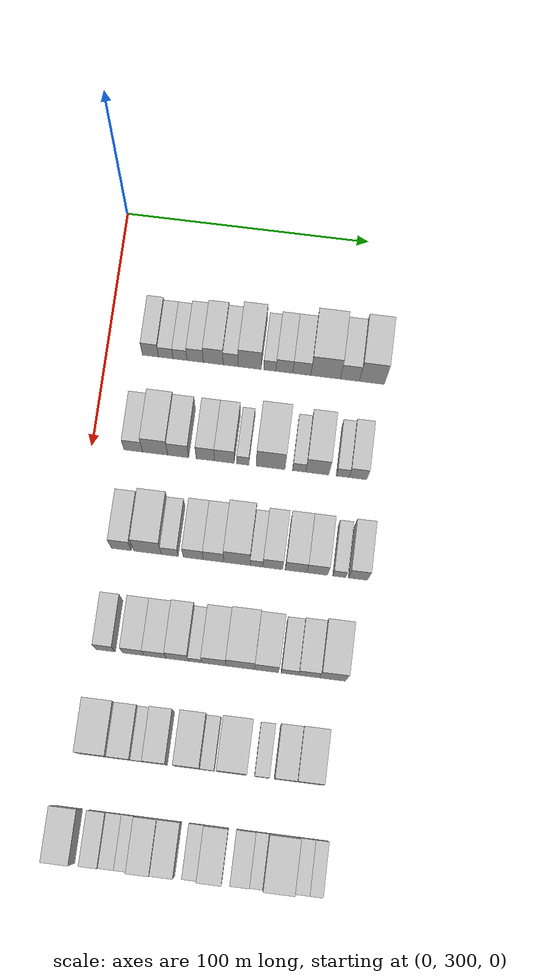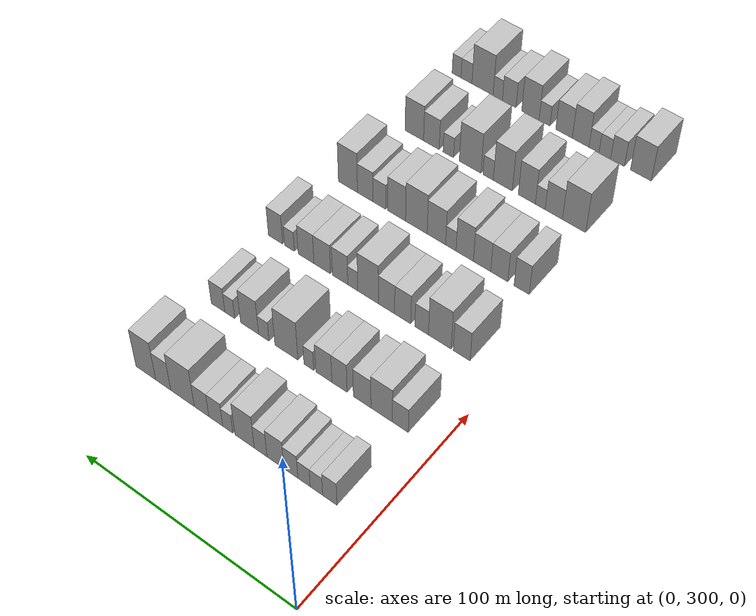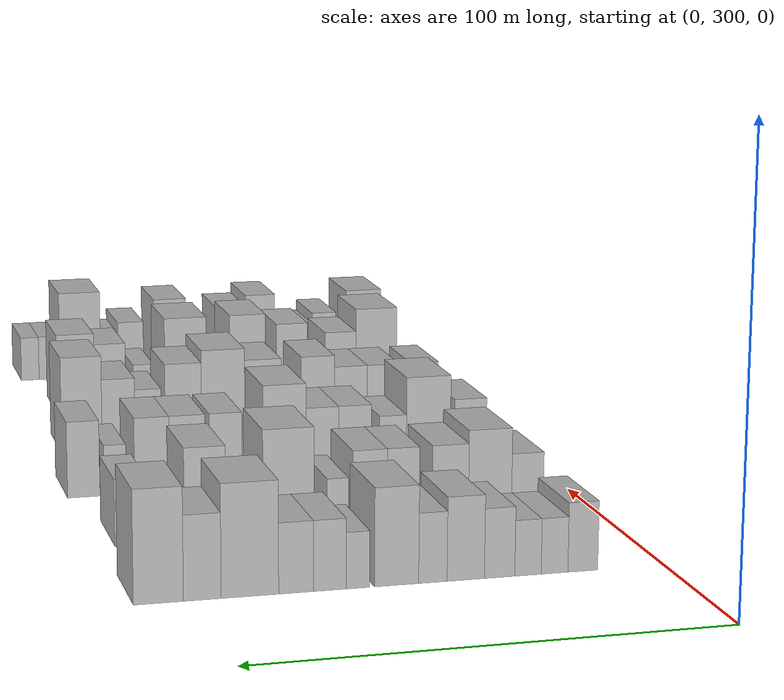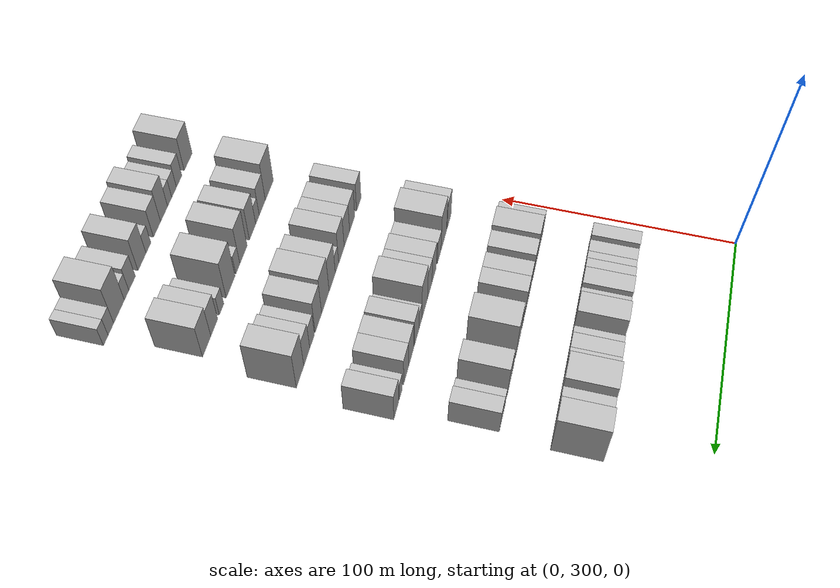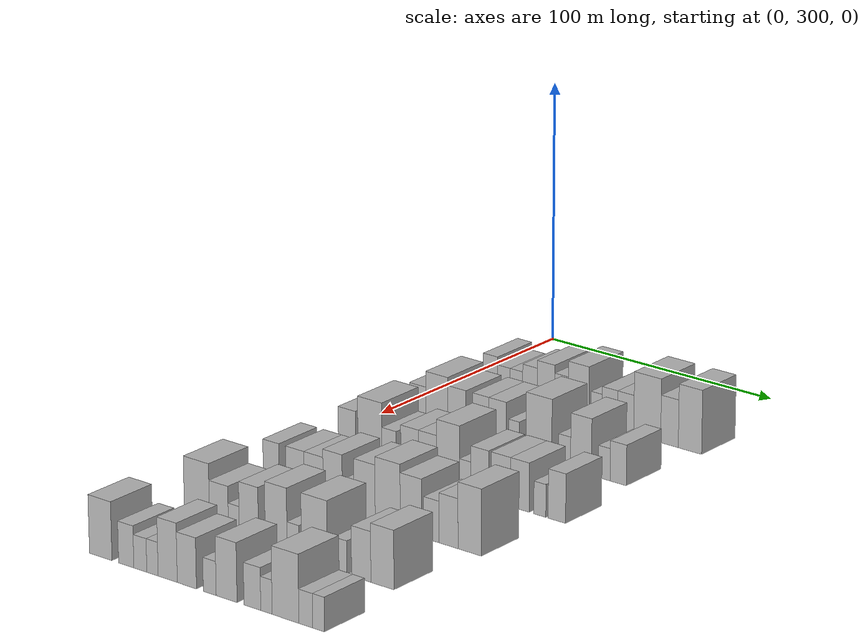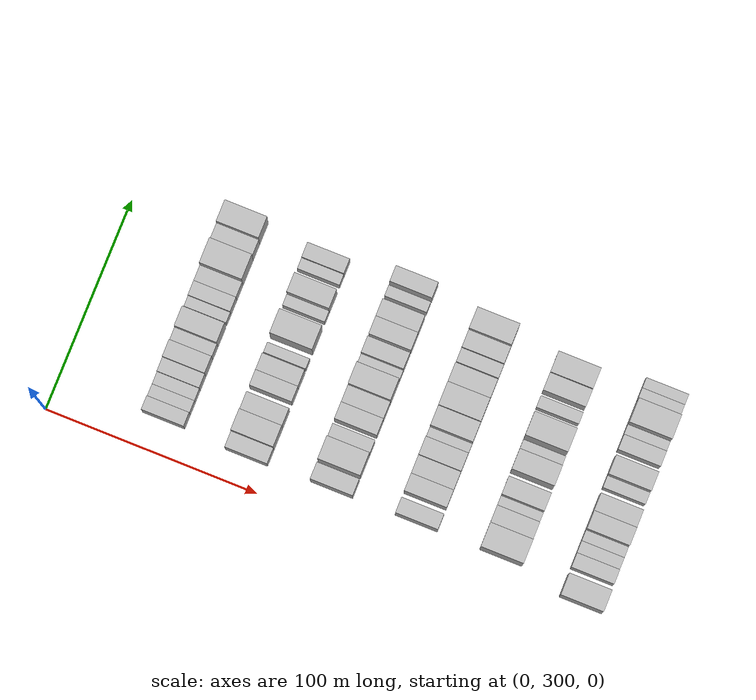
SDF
<sdf version="1.6">
 <world name="default">
  <model name="building_97">
   <static>1</static>
   <pose>50.0000 317.9130 0 0.000000 0.000000 0.000000</pose>
   <link name="link">
    <pose>0 0 7.50 0 0 0</pose>
    <collision name="collision"><geometry><box><size>20.0000 6.5725 15.0000</size></box></geometry></collision>
    <visual name="visual">
     <cast_shadows>0</cast_shadows>
     <geometry><box><size>20.0000 6.5725 15.0000</size></box></geometry>
     <material>
      <script>
       <uri>model://HANNAS_wall/materials/scripts</uri>
       <uri>model://HANNAS_wall/materials/textures</uri>
       <name>vrc/HANNAS_wall</name>
      </script>
     </material>
    </visual>
   </link>
  </model>
  <model name="building_98">
   <static>1</static>
   <pose>50.0000 324.1187 0 0.000000 0.000000 0.000000</pose>
   <link name="link">
    <pose>0 0 6.00 0 0 0</pose>
    <collision name="collision"><geometry><box><size>20.0000 5.8389 12.0000</size></box></geometry></collision>
    <visual name="visual">
     <cast_shadows>0</cast_shadows>
     <geometry><box><size>20.0000 5.8389 12.0000</size></box></geometry>
     <material>
      <script>
       <uri>model://HANNAS_wall/materials/scripts</uri>
       <uri>model://HANNAS_wall/materials/textures</uri>
       <name>vrc/HANNAS_wall</name>
      </script>
     </material>
    </visual>
   </link>
  </model>
  <model name="building_99">
   <static>1</static>
   <pose>50.0000 329.9187 0 0.000000 0.000000 0.000000</pose>
   <link name="link">
    <pose>0 0 6.00 0 0 0</pose>
    <collision name="collision"><geometry><box><size>20.0000 5.7612 12.0000</size></box></geometry></collision>
    <visual name="visual">
     <cast_shadows>0</cast_shadows>
     <geometry><box><size>20.0000 5.7612 12.0000</size></box></geometry>
     <material>
      <script>
       <uri>model://HANNAS_wall/materials/scripts</uri>
       <uri>model://HANNAS_wall/materials/textures</uri>
       <name>vrc/HANNAS_wall</name>
      </script>
     </material>
    </visual>
   </link>
  </model>
  <model name="building_100">
   <static>1</static>
   <pose>50.0000 336.0989 0 0.000000 0.000000 0.000000</pose>
   <link name="link">
    <pose>0 0 7.50 0 0 0</pose>
    <collision name="collision"><geometry><box><size>20.0000 6.5991 15.0000</size></box></geometry></collision>
    <visual name="visual">
     <cast_shadows>0</cast_shadows>
     <geometry><box><size>20.0000 6.5991 15.0000</size></box></geometry>
     <material>
      <script>
       <uri>model://HANNAS_wall/materials/scripts</uri>
       <uri>model://HANNAS_wall/materials/textures</uri>
       <name>vrc/HANNAS_wall</name>
      </script>
     </material>
    </visual>
   </link>
  </model>
  <model name="building_101">
   <static>1</static>
   <pose>50.0000 343.4190 0 0.000000 0.000000 0.000000</pose>
   <link name="link">
    <pose>0 0 9.00 0 0 0</pose>
    <collision name="collision"><geometry><box><size>20.0000 8.0412 18.0000</size></box></geometry></collision>
    <visual name="visual">
     <cast_shadows>0</cast_shadows>
     <geometry><box><size>20.0000 8.0412 18.0000</size></box></geometry>
     <material>
      <script>
       <uri>model://HANNAS_wall/materials/scripts</uri>
       <uri>model://HANNAS_wall/materials/textures</uri>
       <name>vrc/HANNAS_wall</name>
      </script>
     </material>
    </visual>
   </link>
  </model>
  <model name="building_102">
   <static>1</static>
   <pose>50.0000 350.4872 0 0.000000 0.000000 0.000000</pose>
   <link name="link">
    <pose>0 0 7.50 0 0 0</pose>
    <collision name="collision"><geometry><box><size>20.0000 6.0953 15.0000</size></box></geometry></collision>
    <visual name="visual">
     <cast_shadows>0</cast_shadows>
     <geometry><box><size>20.0000 6.0953 15.0000</size></box></geometry>
     <material>
      <script>
       <uri>model://HANNAS_wall/materials/scripts</uri>
       <uri>model://HANNAS_wall/materials/textures</uri>
       <name>vrc/HANNAS_wall</name>
      </script>
     </material>
    </visual>
   </link>
  </model>
  <model name="building_103">
   <static>1</static>
   <pose>50.0000 358.2339 0 0.000000 0.000000 0.000000</pose>
   <link name="link">
    <pose>0 0 10.50 0 0 0</pose>
    <collision name="collision"><geometry><box><size>20.0000 9.3980 21.0000</size></box></geometry></collision>
    <visual name="visual">
     <cast_shadows>0</cast_shadows>
     <geometry><box><size>20.0000 9.3980 21.0000</size></box></geometry>
     <material>
      <script>
       <uri>model://HANNAS_wall/materials/scripts</uri>
       <uri>model://HANNAS_wall/materials/textures</uri>
       <name>vrc/HANNAS_wall</name>
      </script>
     </material>
    </visual>
   </link>
  </model>
  <model name="building_104">
   <static>1</static>
   <pose>50.0000 366.4157 0 0.000000 0.000000 0.000000</pose>
   <link name="link">
    <pose>0 0 6.00 0 0 0</pose>
    <collision name="collision"><geometry><box><size>20.0000 4.9656 12.0000</size></box></geometry></collision>
    <visual name="visual">
     <cast_shadows>0</cast_shadows>
     <geometry><box><size>20.0000 4.9656 12.0000</size></box></geometry>
     <material>
      <script>
       <uri>model://HANNAS_wall/materials/scripts</uri>
       <uri>model://HANNAS_wall/materials/textures</uri>
       <name>vrc/HANNAS_wall</name>
      </script>
     </material>
    </visual>
   </link>
  </model>
  <model name="building_105">
   <static>1</static>
   <pose>50.0000 372.3420 0 0.000000 0.000000 0.000000</pose>
   <link name="link">
    <pose>0 0 7.50 0 0 0</pose>
    <collision name="collision"><geometry><box><size>20.0000 6.8870 15.0000</size></box></geometry></collision>
    <visual name="visual">
     <cast_shadows>0</cast_shadows>
     <geometry><box><size>20.0000 6.8870 15.0000</size></box></geometry>
     <material>
      <script>
       <uri>model://HANNAS_wall/materials/scripts</uri>
       <uri>model://HANNAS_wall/materials/textures</uri>
       <name>vrc/HANNAS_wall</name>
      </script>
     </material>
    </visual>
   </link>
  </model>
  <model name="building_106">
   <static>1</static>
   <pose>50.0000 379.4126 0 0.000000 0.000000 0.000000</pose>
   <link name="link">
    <pose>0 0 7.50 0 0 0</pose>
    <collision name="collision"><geometry><box><size>20.0000 7.2542 15.0000</size></box></geometry></collision>
    <visual name="visual">
     <cast_shadows>0</cast_shadows>
     <geometry><box><size>20.0000 7.2542 15.0000</size></box></geometry>
     <material>
      <script>
       <uri>model://HANNAS_wall/materials/scripts</uri>
       <uri>model://HANNAS_wall/materials/textures</uri>
       <name>vrc/HANNAS_wall</name>
      </script>
     </material>
    </visual>
   </link>
  </model>
  <model name="building_107">
   <static>1</static>
   <pose>50.0000 388.9922 0 0.000000 0.000000 0.000000</pose>
   <link name="link">
    <pose>0 0 12.00 0 0 0</pose>
    <collision name="collision"><geometry><box><size>20.0000 11.9051 24.0000</size></box></geometry></collision>
    <visual name="visual">
     <cast_shadows>0</cast_shadows>
     <geometry><box><size>20.0000 11.9051 24.0000</size></box></geometry>
     <material>
      <script>
       <uri>model://HANNAS_wall/materials/scripts</uri>
       <uri>model://HANNAS_wall/materials/textures</uri>
       <name>vrc/HANNAS_wall</name>
      </script>
     </material>
    </visual>
   </link>
  </model>
  <model name="building_108">
   <static>1</static>
   <pose>50.0000 398.8072 0 0.000000 0.000000 0.000000</pose>
   <link name="link">
    <pose>0 0 9.00 0 0 0</pose>
    <collision name="collision"><geometry><box><size>20.0000 7.7250 18.0000</size></box></geometry></collision>
    <visual name="visual">
     <cast_shadows>0</cast_shadows>
     <geometry><box><size>20.0000 7.7250 18.0000</size></box></geometry>
     <material>
      <script>
       <uri>model://HANNAS_wall/materials/scripts</uri>
       <uri>model://HANNAS_wall/materials/textures</uri>
       <name>vrc/HANNAS_wall</name>
      </script>
     </material>
    </visual>
   </link>
  </model>
  <model name="building_109">
   <static>1</static>
   <pose>50.0000 407.7557 0 0.000000 0.000000 0.000000</pose>
   <link name="link">
    <pose>0 0 12.00 0 0 0</pose>
    <collision name="collision"><geometry><box><size>20.0000 10.1720 24.0000</size></box></geometry></collision>
    <visual name="visual">
     <cast_shadows>0</cast_shadows>
     <geometry><box><size>20.0000 10.1720 24.0000</size></box></geometry>
     <material>
      <script>
       <uri>model://HANNAS_wall/materials/scripts</uri>
       <uri>model://HANNAS_wall/materials/textures</uri>
       <name>vrc/HANNAS_wall</name>
      </script>
     </material>
    </visual>
   </link>
  </model>
  <model name="building_238">
   <static>1</static>
   <pose>90.0000 316.7039 0 0.000000 0.000000 0.000000</pose>
   <link name="link">
    <pose>0 0 7.50 0 0 0</pose>
    <collision name="collision"><geometry><box><size>20.0000 7.4853 15.0000</size></box></geometry></collision>
    <visual name="visual">
     <cast_shadows>0</cast_shadows>
     <geometry><box><size>20.0000 7.4853 15.0000</size></box></geometry>
     <material>
      <script>
       <uri>model://HANNAS_wall/materials/scripts</uri>
       <uri>model://HANNAS_wall/materials/textures</uri>
       <name>vrc/HANNAS_wall</name>
      </script>
     </material>
    </visual>
   </link>
  </model>
  <model name="building_239">
   <static>1</static>
   <pose>90.0000 325.4733 0 0.000000 0.000000 0.000000</pose>
   <link name="link">
    <pose>0 0 10.50 0 0 0</pose>
    <collision name="collision"><geometry><box><size>20.0000 10.0536 21.0000</size></box></geometry></collision>
    <visual name="visual">
     <cast_shadows>0</cast_shadows>
     <geometry><box><size>20.0000 10.0536 21.0000</size></box></geometry>
     <material>
      <script>
       <uri>model://HANNAS_wall/materials/scripts</uri>
       <uri>model://HANNAS_wall/materials/textures</uri>
       <name>vrc/HANNAS_wall</name>
      </script>
     </material>
    </visual>
   </link>
  </model>
  <model name="building_240">
   <static>1</static>
   <pose>90.0000 334.6972 0 0.000000 0.000000 0.000000</pose>
   <link name="link">
    <pose>0 0 9.00 0 0 0</pose>
    <collision name="collision"><geometry><box><size>20.0000 8.3943 18.0000</size></box></geometry></collision>
    <visual name="visual">
     <cast_shadows>0</cast_shadows>
     <geometry><box><size>20.0000 8.3943 18.0000</size></box></geometry>
     <material>
      <script>
       <uri>model://HANNAS_wall/materials/scripts</uri>
       <uri>model://HANNAS_wall/materials/textures</uri>
       <name>vrc/HANNAS_wall</name>
      </script>
     </material>
    </visual>
   </link>
  </model>
  <model name="building_241">
   <static>1</static>
   <pose>90.0000 345.5671 0 0.000000 0.000000 0.000000</pose>
   <link name="link">
    <pose>0 0 9.00 0 0 0</pose>
    <collision name="collision"><geometry><box><size>20.0000 7.3455 18.0000</size></box></geometry></collision>
    <visual name="visual">
     <cast_shadows>0</cast_shadows>
     <geometry><box><size>20.0000 7.3455 18.0000</size></box></geometry>
     <material>
      <script>
       <uri>model://HANNAS_wall/materials/scripts</uri>
       <uri>model://HANNAS_wall/materials/textures</uri>
       <name>vrc/HANNAS_wall</name>
      </script>
     </material>
    </visual>
   </link>
  </model>
  <model name="building_242">
   <static>1</static>
   <pose>90.0000 353.1679 0 0.000000 0.000000 0.000000</pose>
   <link name="link">
    <pose>0 0 9.00 0 0 0</pose>
    <collision name="collision"><geometry><box><size>20.0000 7.8560 18.0000</size></box></geometry></collision>
    <visual name="visual">
     <cast_shadows>0</cast_shadows>
     <geometry><box><size>20.0000 7.8560 18.0000</size></box></geometry>
     <material>
      <script>
       <uri>model://HANNAS_wall/materials/scripts</uri>
       <uri>model://HANNAS_wall/materials/textures</uri>
       <name>vrc/HANNAS_wall</name>
      </script>
     </material>
    </visual>
   </link>
  </model>
  <model name="building_243">
   <static>1</static>
   <pose>90.0000 360.5022 0 0.000000 0.000000 0.000000</pose>
   <link name="link">
    <pose>0 0 6.00 0 0 0</pose>
    <collision name="collision"><geometry><box><size>20.0000 4.8127 12.0000</size></box></geometry></collision>
    <visual name="visual">
     <cast_shadows>0</cast_shadows>
     <geometry><box><size>20.0000 4.8127 12.0000</size></box></geometry>
     <material>
      <script>
       <uri>model://HANNAS_wall/materials/scripts</uri>
       <uri>model://HANNAS_wall/materials/textures</uri>
       <name>vrc/HANNAS_wall</name>
      </script>
     </material>
    </visual>
   </link>
  </model>
  <model name="building_244">
   <static>1</static>
   <pose>90.0000 371.6501 0 0.000000 0.000000 0.000000</pose>
   <link name="link">
    <pose>0 0 12.00 0 0 0</pose>
    <collision name="collision"><geometry><box><size>20.0000 11.4831 24.0000</size></box></geometry></collision>
    <visual name="visual">
     <cast_shadows>0</cast_shadows>
     <geometry><box><size>20.0000 11.4831 24.0000</size></box></geometry>
     <material>
      <script>
       <uri>model://HANNAS_wall/materials/scripts</uri>
       <uri>model://HANNAS_wall/materials/textures</uri>
       <name>vrc/HANNAS_wall</name>
      </script>
     </material>
    </visual>
   </link>
  </model>
  <model name="building_245">
   <static>1</static>
   <pose>90.0000 383.0316 0 0.000000 0.000000 0.000000</pose>
   <link name="link">
    <pose>0 0 6.00 0 0 0</pose>
    <collision name="collision"><geometry><box><size>20.0000 5.2798 12.0000</size></box></geometry></collision>
    <visual name="visual">
     <cast_shadows>0</cast_shadows>
     <geometry><box><size>20.0000 5.2798 12.0000</size></box></geometry>
     <material>
      <script>
       <uri>model://HANNAS_wall/materials/scripts</uri>
       <uri>model://HANNAS_wall/materials/textures</uri>
       <name>vrc/HANNAS_wall</name>
      </script>
     </material>
    </visual>
   </link>
  </model>
  <model name="building_246">
   <static>1</static>
   <pose>90.0000 390.2616 0 0.000000 0.000000 0.000000</pose>
   <link name="link">
    <pose>0 0 10.50 0 0 0</pose>
    <collision name="collision"><geometry><box><size>20.0000 9.1801 21.0000</size></box></geometry></collision>
    <visual name="visual">
     <cast_shadows>0</cast_shadows>
     <geometry><box><size>20.0000 9.1801 21.0000</size></box></geometry>
     <material>
      <script>
       <uri>model://HANNAS_wall/materials/scripts</uri>
       <uri>model://HANNAS_wall/materials/textures</uri>
       <name>vrc/HANNAS_wall</name>
      </script>
     </material>
    </visual>
   </link>
  </model>
  <model name="building_247">
   <static>1</static>
   <pose>90.0000 400.4141 0 0.000000 0.000000 0.000000</pose>
   <link name="link">
    <pose>0 0 6.00 0 0 0</pose>
    <collision name="collision"><geometry><box><size>20.0000 5.1250 12.0000</size></box></geometry></collision>
    <visual name="visual">
     <cast_shadows>0</cast_shadows>
     <geometry><box><size>20.0000 5.1250 12.0000</size></box></geometry>
     <material>
      <script>
       <uri>model://HANNAS_wall/materials/scripts</uri>
       <uri>model://HANNAS_wall/materials/textures</uri>
       <name>vrc/HANNAS_wall</name>
      </script>
     </material>
    </visual>
   </link>
  </model>
  <model name="building_248">
   <static>1</static>
   <pose>90.0000 406.5067 0 0.000000 0.000000 0.000000</pose>
   <link name="link">
    <pose>0 0 7.50 0 0 0</pose>
    <collision name="collision"><geometry><box><size>20.0000 7.0603 15.0000</size></box></geometry></collision>
    <visual name="visual">
     <cast_shadows>0</cast_shadows>
     <geometry><box><size>20.0000 7.0603 15.0000</size></box></geometry>
     <material>
      <script>
       <uri>model://HANNAS_wall/materials/scripts</uri>
       <uri>model://HANNAS_wall/materials/textures</uri>
       <name>vrc/HANNAS_wall</name>
      </script>
     </material>
    </visual>
   </link>
  </model>
  <model name="building_378">
   <static>1</static>
   <pose>130.0000 317.6901 0 0.000000 0.000000 0.000000</pose>
   <link name="link">
    <pose>0 0 9.00 0 0 0</pose>
    <collision name="collision"><geometry><box><size>20.0000 7.9428 18.0000</size></box></geometry></collision>
    <visual name="visual">
     <cast_shadows>0</cast_shadows>
     <geometry><box><size>20.0000 7.9428 18.0000</size></box></geometry>
     <material>
      <script>
       <uri>model://HANNAS_wall/materials/scripts</uri>
       <uri>model://HANNAS_wall/materials/textures</uri>
       <name>vrc/HANNAS_wall</name>
      </script>
     </material>
    </visual>
   </link>
  </model>
  <model name="building_379">
   <static>1</static>
   <pose>130.0000 328.1172 0 0.000000 0.000000 0.000000</pose>
   <link name="link">
    <pose>0 0 12.00 0 0 0</pose>
    <collision name="collision"><geometry><box><size>20.0000 10.9113 24.0000</size></box></geometry></collision>
    <visual name="visual">
     <cast_shadows>0</cast_shadows>
     <geometry><box><size>20.0000 10.9113 24.0000</size></box></geometry>
     <material>
      <script>
       <uri>model://HANNAS_wall/materials/scripts</uri>
       <uri>model://HANNAS_wall/materials/textures</uri>
       <name>vrc/HANNAS_wall</name>
      </script>
     </material>
    </visual>
   </link>
  </model>
  <model name="building_380">
   <static>1</static>
   <pose>130.0000 336.8634 0 0.000000 0.000000 0.000000</pose>
   <link name="link">
    <pose>0 0 7.50 0 0 0</pose>
    <collision name="collision"><geometry><box><size>20.0000 6.5812 15.0000</size></box></geometry></collision>
    <visual name="visual">
     <cast_shadows>0</cast_shadows>
     <geometry><box><size>20.0000 6.5812 15.0000</size></box></geometry>
     <material>
      <script>
       <uri>model://HANNAS_wall/materials/scripts</uri>
       <uri>model://HANNAS_wall/materials/textures</uri>
       <name>vrc/HANNAS_wall</name>
      </script>
     </material>
    </visual>
   </link>
  </model>
  <model name="building_381">
   <static>1</static>
   <pose>130.0000 346.1193 0 0.000000 0.000000 0.000000</pose>
   <link name="link">
    <pose>0 0 9.00 0 0 0</pose>
    <collision name="collision"><geometry><box><size>20.0000 7.9304 18.0000</size></box></geometry></collision>
    <visual name="visual">
     <cast_shadows>0</cast_shadows>
     <geometry><box><size>20.0000 7.9304 18.0000</size></box></geometry>
     <material>
      <script>
       <uri>model://HANNAS_wall/materials/scripts</uri>
       <uri>model://HANNAS_wall/materials/textures</uri>
       <name>vrc/HANNAS_wall</name>
      </script>
     </material>
    </visual>
   </link>
  </model>
  <model name="building_382">
   <static>1</static>
   <pose>130.0000 354.0939 0 0.000000 0.000000 0.000000</pose>
   <link name="link">
    <pose>0 0 9.00 0 0 0</pose>
    <collision name="collision"><geometry><box><size>20.0000 8.0189 18.0000</size></box></geometry></collision>
    <visual name="visual">
     <cast_shadows>0</cast_shadows>
     <geometry><box><size>20.0000 8.0189 18.0000</size></box></geometry>
     <material>
      <script>
       <uri>model://HANNAS_wall/materials/scripts</uri>
       <uri>model://HANNAS_wall/materials/textures</uri>
       <name>vrc/HANNAS_wall</name>
      </script>
     </material>
    </visual>
   </link>
  </model>
  <model name="building_383">
   <static>1</static>
   <pose>130.0000 363.2618 0 0.000000 0.000000 0.000000</pose>
   <link name="link">
    <pose>0 0 12.00 0 0 0</pose>
    <collision name="collision"><geometry><box><size>20.0000 10.3169 24.0000</size></box></geometry></collision>
    <visual name="visual">
     <cast_shadows>0</cast_shadows>
     <geometry><box><size>20.0000 10.3169 24.0000</size></box></geometry>
     <material>
      <script>
       <uri>model://HANNAS_wall/materials/scripts</uri>
       <uri>model://HANNAS_wall/materials/textures</uri>
       <name>vrc/HANNAS_wall</name>
      </script>
     </material>
    </visual>
   </link>
  </model>
  <model name="building_384">
   <static>1</static>
   <pose>130.0000 370.9301 0 0.000000 0.000000 0.000000</pose>
   <link name="link">
    <pose>0 0 6.00 0 0 0</pose>
    <collision name="collision"><geometry><box><size>20.0000 5.0197 12.0000</size></box></geometry></collision>
    <visual name="visual">
     <cast_shadows>0</cast_shadows>
     <geometry><box><size>20.0000 5.0197 12.0000</size></box></geometry>
     <material>
      <script>
       <uri>model://HANNAS_wall/materials/scripts</uri>
       <uri>model://HANNAS_wall/materials/textures</uri>
       <name>vrc/HANNAS_wall</name>
      </script>
     </material>
    </visual>
   </link>
  </model>
  <model name="building_385">
   <static>1</static>
   <pose>130.0000 377.3393 0 0.000000 0.000000 0.000000</pose>
   <link name="link">
    <pose>0 0 9.00 0 0 0</pose>
    <collision name="collision"><geometry><box><size>20.0000 7.7988 18.0000</size></box></geometry></collision>
    <visual name="visual">
     <cast_shadows>0</cast_shadows>
     <geometry><box><size>20.0000 7.7988 18.0000</size></box></geometry>
     <material>
      <script>
       <uri>model://HANNAS_wall/materials/scripts</uri>
       <uri>model://HANNAS_wall/materials/textures</uri>
       <name>vrc/HANNAS_wall</name>
      </script>
     </material>
    </visual>
   </link>
  </model>
  <model name="building_386">
   <static>1</static>
   <pose>130.0000 386.4889 0 0.000000 0.000000 0.000000</pose>
   <link name="link">
    <pose>0 0 9.00 0 0 0</pose>
    <collision name="collision"><geometry><box><size>20.0000 8.5003 18.0000</size></box></geometry></collision>
    <visual name="visual">
     <cast_shadows>0</cast_shadows>
     <geometry><box><size>20.0000 8.5003 18.0000</size></box></geometry>
     <material>
      <script>
       <uri>model://HANNAS_wall/materials/scripts</uri>
       <uri>model://HANNAS_wall/materials/textures</uri>
       <name>vrc/HANNAS_wall</name>
      </script>
     </material>
    </visual>
   </link>
  </model>
  <model name="building_387">
   <static>1</static>
   <pose>130.0000 394.8324 0 0.000000 0.000000 0.000000</pose>
   <link name="link">
    <pose>0 0 9.00 0 0 0</pose>
    <collision name="collision"><geometry><box><size>20.0000 8.1868 18.0000</size></box></geometry></collision>
    <visual name="visual">
     <cast_shadows>0</cast_shadows>
     <geometry><box><size>20.0000 8.1868 18.0000</size></box></geometry>
     <material>
      <script>
       <uri>model://HANNAS_wall/materials/scripts</uri>
       <uri>model://HANNAS_wall/materials/textures</uri>
       <name>vrc/HANNAS_wall</name>
      </script>
     </material>
    </visual>
   </link>
  </model>
  <model name="building_388">
   <static>1</static>
   <pose>130.0000 403.5002 0 0.000000 0.000000 0.000000</pose>
   <link name="link">
    <pose>0 0 6.00 0 0 0</pose>
    <collision name="collision"><geometry><box><size>20.0000 5.1489 12.0000</size></box></geometry></collision>
    <visual name="visual">
     <cast_shadows>0</cast_shadows>
     <geometry><box><size>20.0000 5.1489 12.0000</size></box></geometry>
     <material>
      <script>
       <uri>model://HANNAS_wall/materials/scripts</uri>
       <uri>model://HANNAS_wall/materials/textures</uri>
       <name>vrc/HANNAS_wall</name>
      </script>
     </material>
    </visual>
   </link>
  </model>
  <model name="building_389">
   <static>1</static>
   <pose>130.0000 410.8286 0 0.000000 0.000000 0.000000</pose>
   <link name="link">
    <pose>0 0 9.00 0 0 0</pose>
    <collision name="collision"><geometry><box><size>20.0000 7.5078 18.0000</size></box></geometry></collision>
    <visual name="visual">
     <cast_shadows>0</cast_shadows>
     <geometry><box><size>20.0000 7.5078 18.0000</size></box></geometry>
     <material>
      <script>
       <uri>model://HANNAS_wall/materials/scripts</uri>
       <uri>model://HANNAS_wall/materials/textures</uri>
       <name>vrc/HANNAS_wall</name>
      </script>
     </material>
    </visual>
   </link>
  </model>
  <model name="building_520">
   <static>1</static>
   <pose>170.0000 317.5325 0 0.000000 0.000000 0.000000</pose>
   <link name="link">
    <pose>0 0 9.00 0 0 0</pose>
    <collision name="collision"><geometry><box><size>20.0000 7.3067 18.0000</size></box></geometry></collision>
    <visual name="visual">
     <cast_shadows>0</cast_shadows>
     <geometry><box><size>20.0000 7.3067 18.0000</size></box></geometry>
     <material>
      <script>
       <uri>model://HANNAS_wall/materials/scripts</uri>
       <uri>model://HANNAS_wall/materials/textures</uri>
       <name>vrc/HANNAS_wall</name>
      </script>
     </material>
    </visual>
   </link>
  </model>
  <model name="building_521">
   <static>1</static>
   <pose>170.0000 328.3337 0 0.000000 0.000000 0.000000</pose>
   <link name="link">
    <pose>0 0 9.00 0 0 0</pose>
    <collision name="collision"><geometry><box><size>20.0000 8.2955 18.0000</size></box></geometry></collision>
    <visual name="visual">
     <cast_shadows>0</cast_shadows>
     <geometry><box><size>20.0000 8.2955 18.0000</size></box></geometry>
     <material>
      <script>
       <uri>model://HANNAS_wall/materials/scripts</uri>
       <uri>model://HANNAS_wall/materials/textures</uri>
       <name>vrc/HANNAS_wall</name>
      </script>
     </material>
    </visual>
   </link>
  </model>
  <model name="building_522">
   <static>1</static>
   <pose>170.0000 336.7561 0 0.000000 0.000000 0.000000</pose>
   <link name="link">
    <pose>0 0 9.00 0 0 0</pose>
    <collision name="collision"><geometry><box><size>20.0000 8.5493 18.0000</size></box></geometry></collision>
    <visual name="visual">
     <cast_shadows>0</cast_shadows>
     <geometry><box><size>20.0000 8.5493 18.0000</size></box></geometry>
     <material>
      <script>
       <uri>model://HANNAS_wall/materials/scripts</uri>
       <uri>model://HANNAS_wall/materials/textures</uri>
       <name>vrc/HANNAS_wall</name>
      </script>
     </material>
    </visual>
   </link>
  </model>
  <model name="building_523">
   <static>1</static>
   <pose>170.0000 345.3271 0 0.000000 0.000000 0.000000</pose>
   <link name="link">
    <pose>0 0 10.50 0 0 0</pose>
    <collision name="collision"><geometry><box><size>20.0000 8.5928 21.0000</size></box></geometry></collision>
    <visual name="visual">
     <cast_shadows>0</cast_shadows>
     <geometry><box><size>20.0000 8.5928 21.0000</size></box></geometry>
     <material>
      <script>
       <uri>model://HANNAS_wall/materials/scripts</uri>
       <uri>model://HANNAS_wall/materials/textures</uri>
       <name>vrc/HANNAS_wall</name>
      </script>
     </material>
    </visual>
   </link>
  </model>
  <model name="building_524">
   <static>1</static>
   <pose>170.0000 352.2269 0 0.000000 0.000000 0.000000</pose>
   <link name="link">
    <pose>0 0 6.00 0 0 0</pose>
    <collision name="collision"><geometry><box><size>20.0000 5.2067 12.0000</size></box></geometry></collision>
    <visual name="visual">
     <cast_shadows>0</cast_shadows>
     <geometry><box><size>20.0000 5.2067 12.0000</size></box></geometry>
     <material>
      <script>
       <uri>model://HANNAS_wall/materials/scripts</uri>
       <uri>model://HANNAS_wall/materials/textures</uri>
       <name>vrc/HANNAS_wall</name>
      </script>
     </material>
    </visual>
   </link>
  </model>
  <model name="building_525">
   <static>1</static>
   <pose>170.0000 359.4967 0 0.000000 0.000000 0.000000</pose>
   <link name="link">
    <pose>0 0 10.50 0 0 0</pose>
    <collision name="collision"><geometry><box><size>20.0000 9.3330 21.0000</size></box></geometry></collision>
    <visual name="visual">
     <cast_shadows>0</cast_shadows>
     <geometry><box><size>20.0000 9.3330 21.0000</size></box></geometry>
     <material>
      <script>
       <uri>model://HANNAS_wall/materials/scripts</uri>
       <uri>model://HANNAS_wall/materials/textures</uri>
       <name>vrc/HANNAS_wall</name>
      </script>
     </material>
    </visual>
   </link>
  </model>
  <model name="building_526">
   <static>1</static>
   <pose>170.0000 369.6705 0 0.000000 0.000000 0.000000</pose>
   <link name="link">
    <pose>0 0 12.00 0 0 0</pose>
    <collision name="collision"><geometry><box><size>20.0000 11.0145 24.0000</size></box></geometry></collision>
    <visual name="visual">
     <cast_shadows>0</cast_shadows>
     <geometry><box><size>20.0000 11.0145 24.0000</size></box></geometry>
     <material>
      <script>
       <uri>model://HANNAS_wall/materials/scripts</uri>
       <uri>model://HANNAS_wall/materials/textures</uri>
       <name>vrc/HANNAS_wall</name>
      </script>
     </material>
    </visual>
   </link>
  </model>
  <model name="building_527">
   <static>1</static>
   <pose>170.0000 379.8020 0 0.000000 0.000000 0.000000</pose>
   <link name="link">
    <pose>0 0 10.50 0 0 0</pose>
    <collision name="collision"><geometry><box><size>20.0000 9.2487 21.0000</size></box></geometry></collision>
    <visual name="visual">
     <cast_shadows>0</cast_shadows>
     <geometry><box><size>20.0000 9.2487 21.0000</size></box></geometry>
     <material>
      <script>
       <uri>model://HANNAS_wall/materials/scripts</uri>
       <uri>model://HANNAS_wall/materials/textures</uri>
       <name>vrc/HANNAS_wall</name>
      </script>
     </material>
    </visual>
   </link>
  </model>
  <model name="building_528">
   <static>1</static>
   <pose>170.0000 388.7083 0 0.000000 0.000000 0.000000</pose>
   <link name="link">
    <pose>0 0 7.50 0 0 0</pose>
    <collision name="collision"><geometry><box><size>20.0000 6.5637 15.0000</size></box></geometry></collision>
    <visual name="visual">
     <cast_shadows>0</cast_shadows>
     <geometry><box><size>20.0000 6.5637 15.0000</size></box></geometry>
     <material>
      <script>
       <uri>model://HANNAS_wall/materials/scripts</uri>
       <uri>model://HANNAS_wall/materials/textures</uri>
       <name>vrc/HANNAS_wall</name>
      </script>
     </material>
    </visual>
   </link>
  </model>
  <model name="building_529">
   <static>1</static>
   <pose>170.0000 396.1041 0 0.000000 0.000000 0.000000</pose>
   <link name="link">
    <pose>0 0 9.00 0 0 0</pose>
    <collision name="collision"><geometry><box><size>20.0000 8.2280 18.0000</size></box></geometry></collision>
    <visual name="visual">
     <cast_shadows>0</cast_shadows>
     <geometry><box><size>20.0000 8.2280 18.0000</size></box></geometry>
     <material>
      <script>
       <uri>model://HANNAS_wall/materials/scripts</uri>
       <uri>model://HANNAS_wall/materials/textures</uri>
       <name>vrc/HANNAS_wall</name>
      </script>
     </material>
    </visual>
   </link>
  </model>
  <model name="building_530">
   <static>1</static>
   <pose>170.0000 405.2457 0 0.000000 0.000000 0.000000</pose>
   <link name="link">
    <pose>0 0 12.00 0 0 0</pose>
    <collision name="collision"><geometry><box><size>20.0000 10.0552 24.0000</size></box></geometry></collision>
    <visual name="visual">
     <cast_shadows>0</cast_shadows>
     <geometry><box><size>20.0000 10.0552 24.0000</size></box></geometry>
     <material>
      <script>
       <uri>model://HANNAS_wall/materials/scripts</uri>
       <uri>model://HANNAS_wall/materials/textures</uri>
       <name>vrc/HANNAS_wall</name>
      </script>
     </material>
    </visual>
   </link>
  </model>
  <model name="building_659">
   <static>1</static>
   <pose>210.0000 319.3109 0 0.000000 0.000000 0.000000</pose>
   <link name="link">
    <pose>0 0 12.00 0 0 0</pose>
    <collision name="collision"><geometry><box><size>20.0000 11.3988 24.0000</size></box></geometry></collision>
    <visual name="visual">
     <cast_shadows>0</cast_shadows>
     <geometry><box><size>20.0000 11.3988 24.0000</size></box></geometry>
     <material>
      <script>
       <uri>model://HANNAS_wall/materials/scripts</uri>
       <uri>model://HANNAS_wall/materials/textures</uri>
       <name>vrc/HANNAS_wall</name>
      </script>
     </material>
    </visual>
   </link>
  </model>
  <model name="building_660">
   <static>1</static>
   <pose>210.0000 329.2577 0 0.000000 0.000000 0.000000</pose>
   <link name="link">
    <pose>0 0 9.00 0 0 0</pose>
    <collision name="collision"><geometry><box><size>20.0000 8.4949 18.0000</size></box></geometry></collision>
    <visual name="visual">
     <cast_shadows>0</cast_shadows>
     <geometry><box><size>20.0000 8.4949 18.0000</size></box></geometry>
     <material>
      <script>
       <uri>model://HANNAS_wall/materials/scripts</uri>
       <uri>model://HANNAS_wall/materials/textures</uri>
       <name>vrc/HANNAS_wall</name>
      </script>
     </material>
    </visual>
   </link>
  </model>
  <model name="building_661">
   <static>1</static>
   <pose>210.0000 335.9467 0 0.000000 0.000000 0.000000</pose>
   <link name="link">
    <pose>0 0 6.00 0 0 0</pose>
    <collision name="collision"><geometry><box><size>20.0000 4.8831 12.0000</size></box></geometry></collision>
    <visual name="visual">
     <cast_shadows>0</cast_shadows>
     <geometry><box><size>20.0000 4.8831 12.0000</size></box></geometry>
     <material>
      <script>
       <uri>model://HANNAS_wall/materials/scripts</uri>
       <uri>model://HANNAS_wall/materials/textures</uri>
       <name>vrc/HANNAS_wall</name>
      </script>
     </material>
    </visual>
   </link>
  </model>
  <model name="building_662">
   <static>1</static>
   <pose>210.0000 342.6683 0 0.000000 0.000000 0.000000</pose>
   <link name="link">
    <pose>0 0 10.50 0 0 0</pose>
    <collision name="collision"><geometry><box><size>20.0000 8.5602 21.0000</size></box></geometry></collision>
    <visual name="visual">
     <cast_shadows>0</cast_shadows>
     <geometry><box><size>20.0000 8.5602 21.0000</size></box></geometry>
     <material>
      <script>
       <uri>model://HANNAS_wall/materials/scripts</uri>
       <uri>model://HANNAS_wall/materials/textures</uri>
       <name>vrc/HANNAS_wall</name>
      </script>
     </material>
    </visual>
   </link>
  </model>
  <model name="building_663">
   <static>1</static>
   <pose>210.0000 354.7803 0 0.000000 0.000000 0.000000</pose>
   <link name="link">
    <pose>0 0 12.00 0 0 0</pose>
    <collision name="collision"><geometry><box><size>20.0000 9.6637 24.0000</size></box></geometry></collision>
    <visual name="visual">
     <cast_shadows>0</cast_shadows>
     <geometry><box><size>20.0000 9.6637 24.0000</size></box></geometry>
     <material>
      <script>
       <uri>model://HANNAS_wall/materials/scripts</uri>
       <uri>model://HANNAS_wall/materials/textures</uri>
       <name>vrc/HANNAS_wall</name>
      </script>
     </material>
    </visual>
   </link>
  </model>
  <model name="building_664">
   <static>1</static>
   <pose>210.0000 362.2680 0 0.000000 0.000000 0.000000</pose>
   <link name="link">
    <pose>0 0 6.00 0 0 0</pose>
    <collision name="collision"><geometry><box><size>20.0000 5.3117 12.0000</size></box></geometry></collision>
    <visual name="visual">
     <cast_shadows>0</cast_shadows>
     <geometry><box><size>20.0000 5.3117 12.0000</size></box></geometry>
     <material>
      <script>
       <uri>model://HANNAS_wall/materials/scripts</uri>
       <uri>model://HANNAS_wall/materials/textures</uri>
       <name>vrc/HANNAS_wall</name>
      </script>
     </material>
    </visual>
   </link>
  </model>
  <model name="building_665">
   <static>1</static>
   <pose>210.0000 371.5340 0 0.000000 0.000000 0.000000</pose>
   <link name="link">
    <pose>0 0 12.00 0 0 0</pose>
    <collision name="collision"><geometry><box><size>20.0000 11.2203 24.0000</size></box></geometry></collision>
    <visual name="visual">
     <cast_shadows>0</cast_shadows>
     <geometry><box><size>20.0000 11.2203 24.0000</size></box></geometry>
     <material>
      <script>
       <uri>model://HANNAS_wall/materials/scripts</uri>
       <uri>model://HANNAS_wall/materials/textures</uri>
       <name>vrc/HANNAS_wall</name>
      </script>
     </material>
    </visual>
   </link>
  </model>
  <model name="building_666">
   <static>1</static>
   <pose>210.0000 382.8981 0 0.000000 0.000000 0.000000</pose>
   <link name="link">
    <pose>0 0 6.00 0 0 0</pose>
    <collision name="collision"><geometry><box><size>20.0000 5.5078 12.0000</size></box></geometry></collision>
    <visual name="visual">
     <cast_shadows>0</cast_shadows>
     <geometry><box><size>20.0000 5.5078 12.0000</size></box></geometry>
     <material>
      <script>
       <uri>model://HANNAS_wall/materials/scripts</uri>
       <uri>model://HANNAS_wall/materials/textures</uri>
       <name>vrc/HANNAS_wall</name>
      </script>
     </material>
    </visual>
   </link>
  </model>
  <model name="building_667">
   <static>1</static>
   <pose>210.0000 391.8030 0 0.000000 0.000000 0.000000</pose>
   <link name="link">
    <pose>0 0 9.00 0 0 0</pose>
    <collision name="collision"><geometry><box><size>20.0000 8.3020 18.0000</size></box></geometry></collision>
    <visual name="visual">
     <cast_shadows>0</cast_shadows>
     <geometry><box><size>20.0000 8.3020 18.0000</size></box></geometry>
     <material>
      <script>
       <uri>model://HANNAS_wall/materials/scripts</uri>
       <uri>model://HANNAS_wall/materials/textures</uri>
       <name>vrc/HANNAS_wall</name>
      </script>
     </material>
    </visual>
   </link>
  </model>
  <model name="building_668">
   <static>1</static>
   <pose>210.0000 400.8751 0 0.000000 0.000000 0.000000</pose>
   <link name="link">
    <pose>0 0 10.50 0 0 0</pose>
    <collision name="collision"><geometry><box><size>20.0000 9.8422 21.0000</size></box></geometry></collision>
    <visual name="visual">
     <cast_shadows>0</cast_shadows>
     <geometry><box><size>20.0000 9.8422 21.0000</size></box></geometry>
     <material>
      <script>
       <uri>model://HANNAS_wall/materials/scripts</uri>
       <uri>model://HANNAS_wall/materials/textures</uri>
       <name>vrc/HANNAS_wall</name>
      </script>
     </material>
    </visual>
   </link>
  </model>
  <model name="building_801">
   <static>1</static>
   <pose>250.0000 312.4006 0 0.000000 0.000000 0.000000</pose>
   <link name="link">
    <pose>0 0 10.50 0 0 0</pose>
    <collision name="collision"><geometry><box><size>20.0000 10.2188 21.0000</size></box></geometry></collision>
    <visual name="visual">
     <cast_shadows>0</cast_shadows>
     <geometry><box><size>20.0000 10.2188 21.0000</size></box></geometry>
     <material>
      <script>
       <uri>model://HANNAS_wall/materials/scripts</uri>
       <uri>model://HANNAS_wall/materials/textures</uri>
       <name>vrc/HANNAS_wall</name>
      </script>
     </material>
    </visual>
   </link>
  </model>
  <model name="building_802">
   <static>1</static>
   <pose>250.0000 323.9387 0 0.000000 0.000000 0.000000</pose>
   <link name="link">
    <pose>0 0 7.50 0 0 0</pose>
    <collision name="collision"><geometry><box><size>20.0000 6.8573 15.0000</size></box></geometry></collision>
    <visual name="visual">
     <cast_shadows>0</cast_shadows>
     <geometry><box><size>20.0000 6.8573 15.0000</size></box></geometry>
     <material>
      <script>
       <uri>model://HANNAS_wall/materials/scripts</uri>
       <uri>model://HANNAS_wall/materials/textures</uri>
       <name>vrc/HANNAS_wall</name>
      </script>
     </material>
    </visual>
   </link>
  </model>
  <model name="building_803">
   <static>1</static>
   <pose>250.0000 330.2740 0 0.000000 0.000000 0.000000</pose>
   <link name="link">
    <pose>0 0 6.00 0 0 0</pose>
    <collision name="collision"><geometry><box><size>20.0000 5.8133 12.0000</size></box></geometry></collision>
    <visual name="visual">
     <cast_shadows>0</cast_shadows>
     <geometry><box><size>20.0000 5.8133 12.0000</size></box></geometry>
     <material>
      <script>
       <uri>model://HANNAS_wall/materials/scripts</uri>
       <uri>model://HANNAS_wall/materials/textures</uri>
       <name>vrc/HANNAS_wall</name>
      </script>
     </material>
    </visual>
   </link>
  </model>
  <model name="building_804">
   <static>1</static>
   <pose>250.0000 335.7151 0 0.000000 0.000000 0.000000</pose>
   <link name="link">
    <pose>0 0 6.00 0 0 0</pose>
    <collision name="collision"><geometry><box><size>20.0000 5.0689 12.0000</size></box></geometry></collision>
    <visual name="visual">
     <cast_shadows>0</cast_shadows>
     <geometry><box><size>20.0000 5.0689 12.0000</size></box></geometry>
     <material>
      <script>
       <uri>model://HANNAS_wall/materials/scripts</uri>
       <uri>model://HANNAS_wall/materials/textures</uri>
       <name>vrc/HANNAS_wall</name>
      </script>
     </material>
    </visual>
   </link>
  </model>
  <model name="building_805">
   <static>1</static>
   <pose>250.0000 342.4975 0 0.000000 0.000000 0.000000</pose>
   <link name="link">
    <pose>0 0 10.50 0 0 0</pose>
    <collision name="collision"><geometry><box><size>20.0000 8.4959 21.0000</size></box></geometry></collision>
    <visual name="visual">
     <cast_shadows>0</cast_shadows>
     <geometry><box><size>20.0000 8.4959 21.0000</size></box></geometry>
     <material>
      <script>
       <uri>model://HANNAS_wall/materials/scripts</uri>
       <uri>model://HANNAS_wall/materials/textures</uri>
       <name>vrc/HANNAS_wall</name>
      </script>
     </material>
    </visual>
   </link>
  </model>
  <model name="building_806">
   <static>1</static>
   <pose>250.0000 350.9786 0 0.000000 0.000000 0.000000</pose>
   <link name="link">
    <pose>0 0 9.00 0 0 0</pose>
    <collision name="collision"><geometry><box><size>20.0000 8.4663 18.0000</size></box></geometry></collision>
    <visual name="visual">
     <cast_shadows>0</cast_shadows>
     <geometry><box><size>20.0000 8.4663 18.0000</size></box></geometry>
     <material>
      <script>
       <uri>model://HANNAS_wall/materials/scripts</uri>
       <uri>model://HANNAS_wall/materials/textures</uri>
       <name>vrc/HANNAS_wall</name>
      </script>
     </material>
    </visual>
   </link>
  </model>
  <model name="building_807">
   <static>1</static>
   <pose>250.0000 361.0284 0 0.000000 0.000000 0.000000</pose>
   <link name="link">
    <pose>0 0 6.00 0 0 0</pose>
    <collision name="collision"><geometry><box><size>20.0000 5.6334 12.0000</size></box></geometry></collision>
    <visual name="visual">
     <cast_shadows>0</cast_shadows>
     <geometry><box><size>20.0000 5.6334 12.0000</size></box></geometry>
     <material>
      <script>
       <uri>model://HANNAS_wall/materials/scripts</uri>
       <uri>model://HANNAS_wall/materials/textures</uri>
       <name>vrc/HANNAS_wall</name>
      </script>
     </material>
    </visual>
   </link>
  </model>
  <model name="building_808">
   <static>1</static>
   <pose>250.0000 368.3869 0 0.000000 0.000000 0.000000</pose>
   <link name="link">
    <pose>0 0 10.50 0 0 0</pose>
    <collision name="collision"><geometry><box><size>20.0000 9.0836 21.0000</size></box></geometry></collision>
    <visual name="visual">
     <cast_shadows>0</cast_shadows>
     <geometry><box><size>20.0000 9.0836 21.0000</size></box></geometry>
     <material>
      <script>
       <uri>model://HANNAS_wall/materials/scripts</uri>
       <uri>model://HANNAS_wall/materials/textures</uri>
       <name>vrc/HANNAS_wall</name>
      </script>
     </material>
    </visual>
   </link>
  </model>
  <model name="building_809">
   <static>1</static>
   <pose>250.0000 379.5408 0 0.000000 0.000000 0.000000</pose>
   <link name="link">
    <pose>0 0 7.50 0 0 0</pose>
    <collision name="collision"><geometry><box><size>20.0000 7.2242 15.0000</size></box></geometry></collision>
    <visual name="visual">
     <cast_shadows>0</cast_shadows>
     <geometry><box><size>20.0000 7.2242 15.0000</size></box></geometry>
     <material>
      <script>
       <uri>model://HANNAS_wall/materials/scripts</uri>
       <uri>model://HANNAS_wall/materials/textures</uri>
       <name>vrc/HANNAS_wall</name>
      </script>
     </material>
    </visual>
   </link>
  </model>
  <model name="building_810">
   <static>1</static>
   <pose>250.0000 385.5973 0 0.000000 0.000000 0.000000</pose>
   <link name="link">
    <pose>0 0 6.00 0 0 0</pose>
    <collision name="collision"><geometry><box><size>20.0000 4.8888 12.0000</size></box></geometry></collision>
    <visual name="visual">
     <cast_shadows>0</cast_shadows>
     <geometry><box><size>20.0000 4.8888 12.0000</size></box></geometry>
     <material>
      <script>
       <uri>model://HANNAS_wall/materials/scripts</uri>
       <uri>model://HANNAS_wall/materials/textures</uri>
       <name>vrc/HANNAS_wall</name>
      </script>
     </material>
    </visual>
   </link>
  </model>
  <model name="building_811">
   <static>1</static>
   <pose>250.0000 393.7496 0 0.000000 0.000000 0.000000</pose>
   <link name="link">
    <pose>0 0 12.00 0 0 0</pose>
    <collision name="collision"><geometry><box><size>20.0000 11.4159 24.0000</size></box></geometry></collision>
    <visual name="visual">
     <cast_shadows>0</cast_shadows>
     <geometry><box><size>20.0000 11.4159 24.0000</size></box></geometry>
     <material>
      <script>
       <uri>model://HANNAS_wall/materials/scripts</uri>
       <uri>model://HANNAS_wall/materials/textures</uri>
       <name>vrc/HANNAS_wall</name>
      </script>
     </material>
    </visual>
   </link>
  </model>
  <model name="building_812">
   <static>1</static>
   <pose>250.0000 402.3945 0 0.000000 0.000000 0.000000</pose>
   <link name="link">
    <pose>0 0 6.00 0 0 0</pose>
    <collision name="collision"><geometry><box><size>20.0000 5.8739 12.0000</size></box></geometry></collision>
    <visual name="visual">
     <cast_shadows>0</cast_shadows>
     <geometry><box><size>20.0000 5.8739 12.0000</size></box></geometry>
     <material>
      <script>
       <uri>model://HANNAS_wall/materials/scripts</uri>
       <uri>model://HANNAS_wall/materials/textures</uri>
       <name>vrc/HANNAS_wall</name>
      </script>
     </material>
    </visual>
   </link>
  </model>
  <model name="building_813">
   <static>1</static>
   <pose>250.0000 407.7818 0 0.000000 0.000000 0.000000</pose>
   <link name="link">
    <pose>0 0 6.00 0 0 0</pose>
    <collision name="collision"><geometry><box><size>20.0000 4.9006 12.0000</size></box></geometry></collision>
    <visual name="visual">
     <cast_shadows>0</cast_shadows>
     <geometry><box><size>20.0000 4.9006 12.0000</size></box></geometry>
     <material>
      <script>
       <uri>model://HANNAS_wall/materials/scripts</uri>
       <uri>model://HANNAS_wall/materials/textures</uri>
       <name>vrc/HANNAS_wall</name>
      </script>
     </material>
    </visual>
   </link>
  </model>
 </world>
</sdf>
